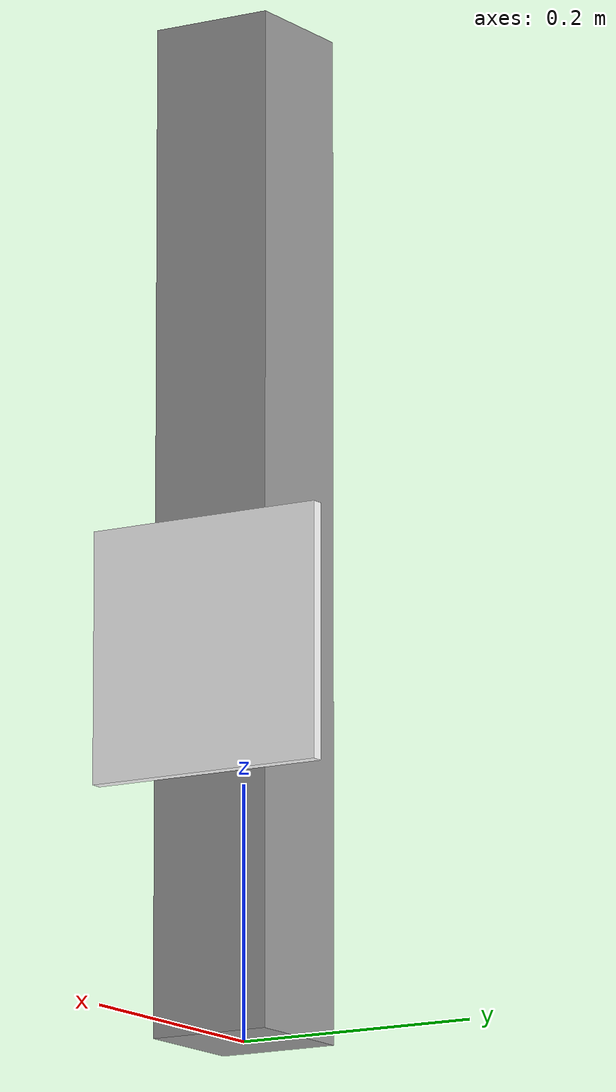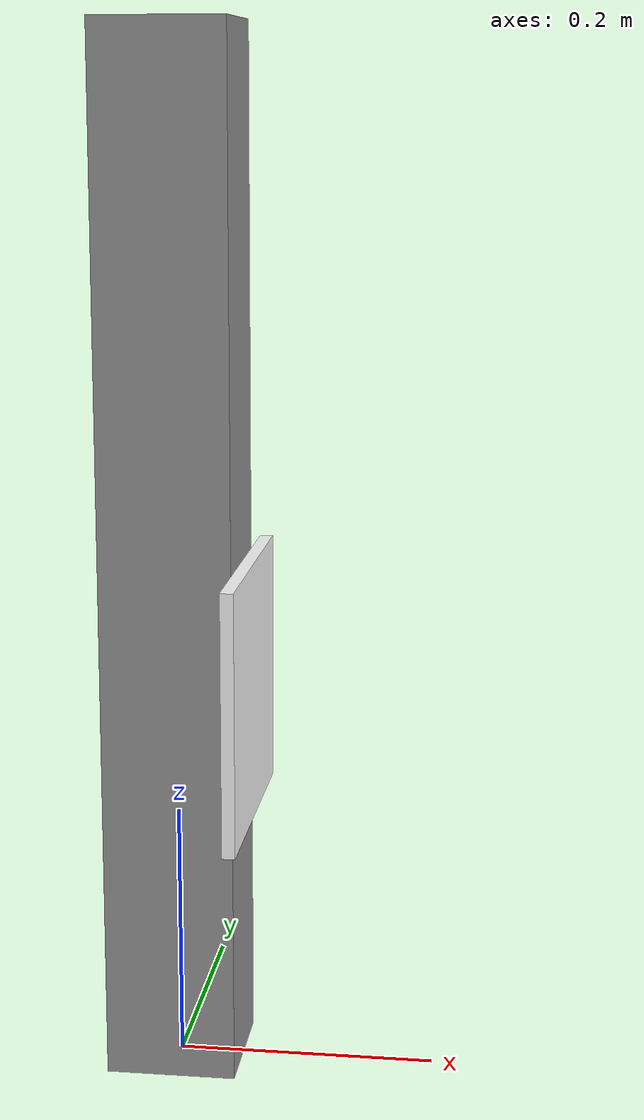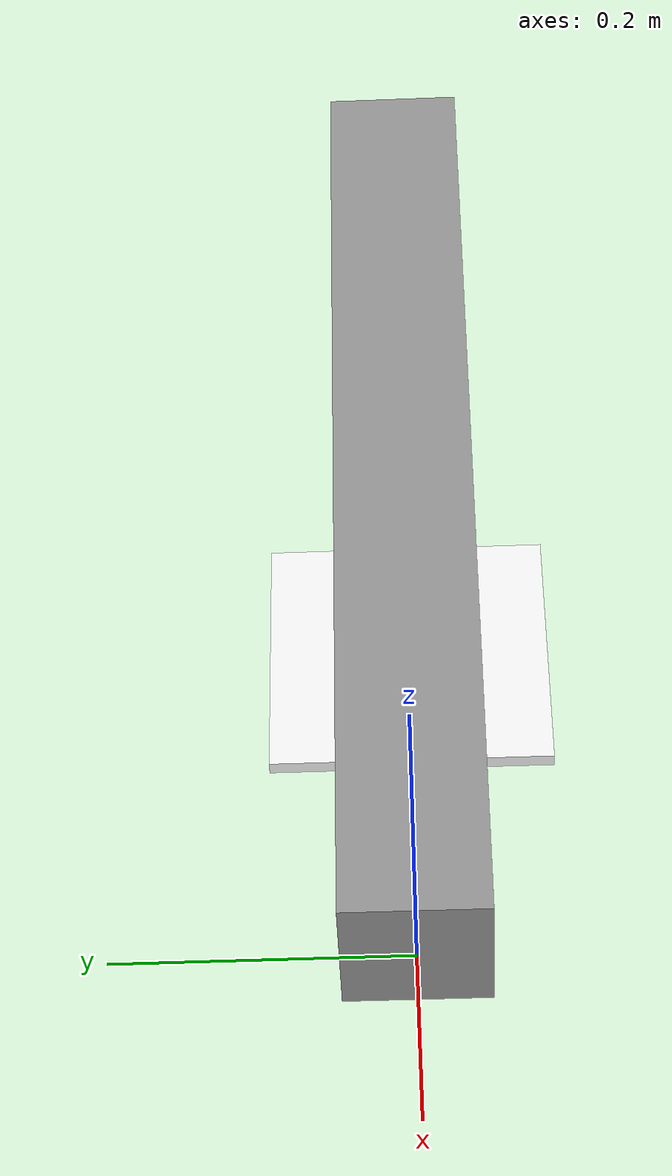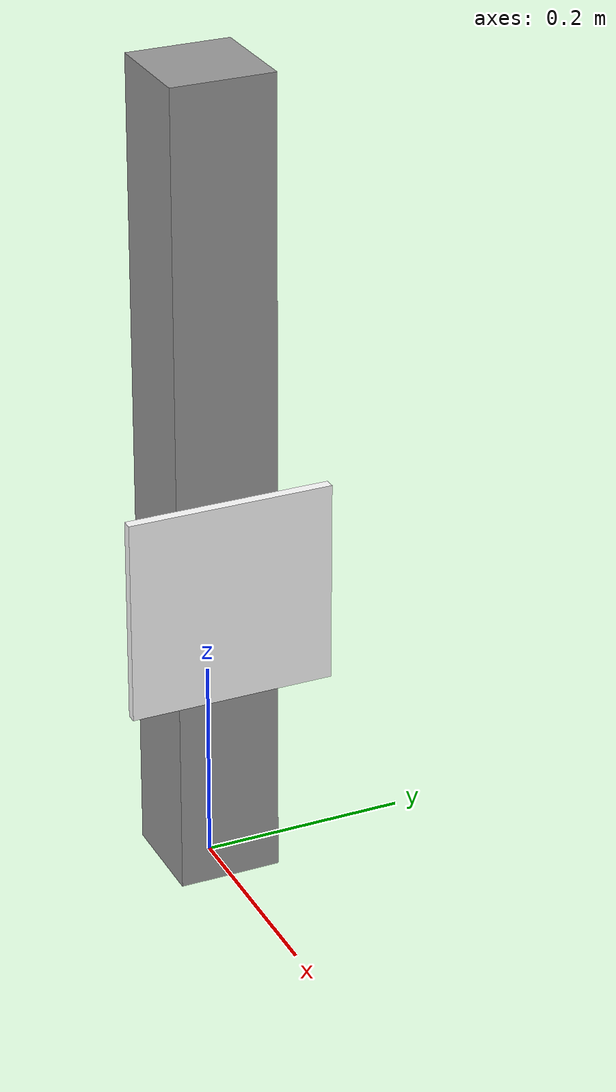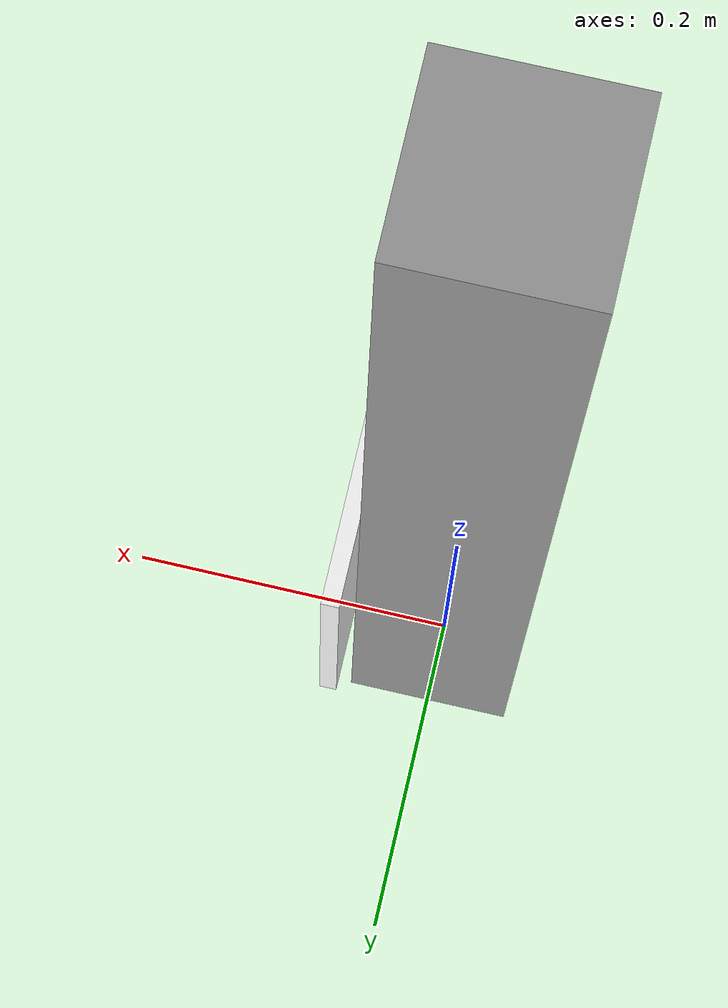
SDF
<?xml version="1.0" ?>
<sdf version="1.8">
  <model name="station_A_002">
    <static>true</static>
    <link name="link">
      <!-- Support Pillar -->
      <collision name="pillar_collision">
        <pose>0 0 0.4 0 0 0</pose>
        <geometry>
          <box>
            <size>0.1 0.1 0.8</size>
          </box>
        </geometry>
      </collision>
      <visual name="pillar_visual">
        <pose>0 0 0.4 0 0 0</pose>
        <geometry>
          <box>
            <size>0.1 0.1 0.8</size>
          </box>
        </geometry>
        <material>
          <ambient>0.6 0.6 0.6 1</ambient>
          <diffuse>0.6 0.6 0.6 1</diffuse>
        </material>
      </visual>

      <!-- QR Code Plate -->
      <collision name="qr_collision">
        <pose>0.055 0 0.3 0 0 0</pose>
        <geometry>
          <box>
            <size>0.01 0.2 0.2</size>
          </box>
        </geometry>
      </collision>
      <visual name="qr_visual">
        <pose>0.055 0 0.3 0 0 0</pose>
        <geometry>
          <box>
            <size>0.01 0.2 0.2</size>
          </box>
        </geometry>
        <material>
          <ambient>1 1 1 1</ambient>
          <diffuse>1 1 1 1</diffuse>
          <pbr>
            <metal>
              <albedo_map>model://station_A_002/materials/textures/station_A_002.png</albedo_map>
              <roughness>1.0</roughness>
              <metalness>0.0</metalness>
            </metal>
          </pbr>
        </material>
      </visual>
    </link>
  </model>
</sdf>
